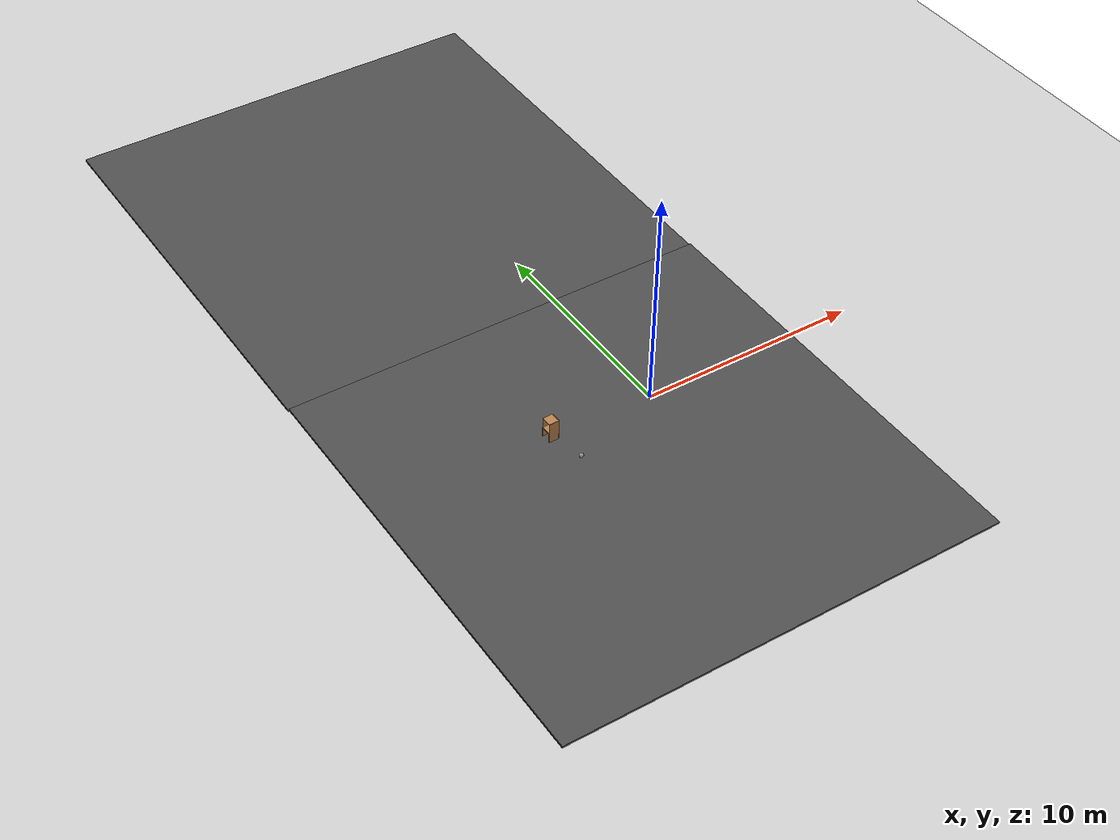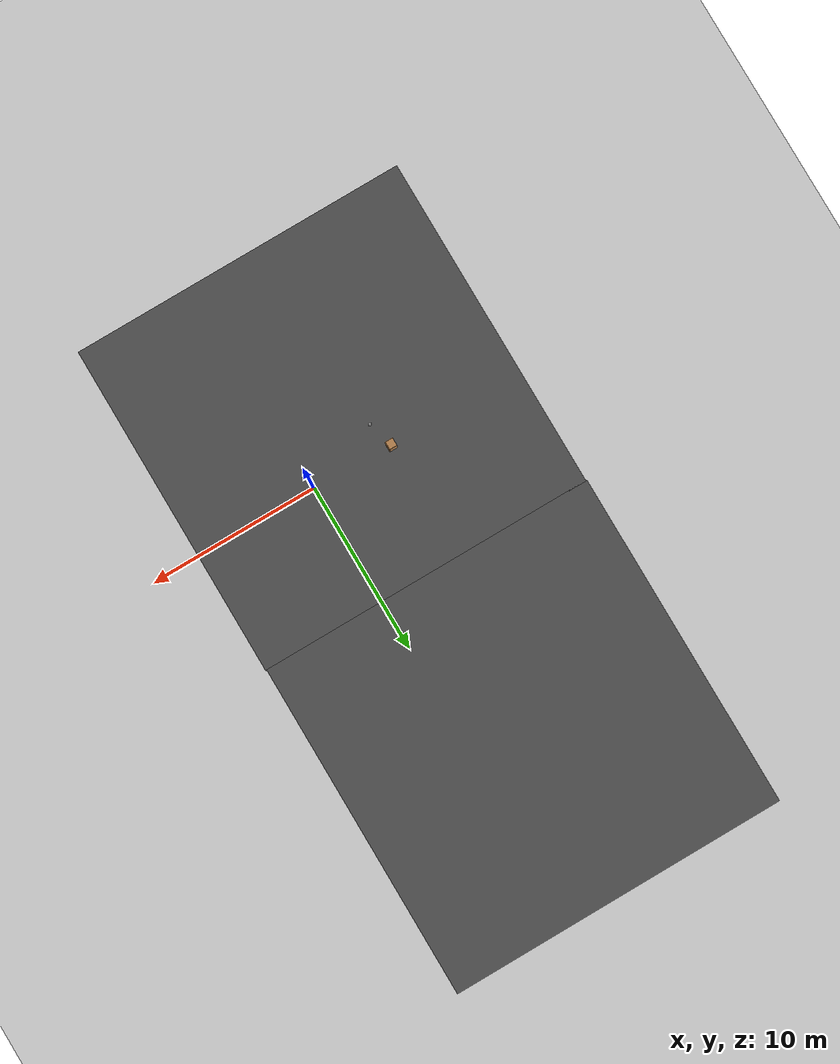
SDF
<sdf version="1.6">
 <world name="default">
  <model name="ground_plane">
   <static>1</static>
   <link name="link">
    <collision name="collision">
     <geometry><plane><normal>0 0 1</normal><size>100 100</size></plane></geometry>
     <surface>
      <contact><collide_bitmask>65535</collide_bitmask></contact>
      <friction><ode><mu>100</mu><mu2>50</mu2></ode></friction>
     </surface>
    </collision>
    <visual name="visual">
     <cast_shadows>0</cast_shadows>
     <geometry><plane><normal>0 0 1</normal><size>100 100</size></plane></geometry>
     <material>
      <script><uri>file://media/materials/scripts/gazebo.material</uri><name>Gazebo/Grey</name></script>
     </material>
    </visual>
   </link>
  </model>
  <model name="cabinet">
   <static>1</static>
   <link name="cabinet_bottom_plate">
    <inertial>
     <pose>0 0 -1 0 -0 0</pose>
     <inertia><ixx>2.05</ixx><ixy>0</ixy><ixz>0</ixz><iyy>2.05</iyy><iyz>0</iyz><izz>2.05</izz></inertia>
     <mass>25</mass>
    </inertial>
    <collision name="cabinet_bottom_plate_geom">
     <pose>0 0 0.01 0 -0 0</pose>
     <geometry><box><size>0.45 0.45 0.02</size></box></geometry>
    </collision>
    <visual name="cabinet_bottom_plate_geom_visual">
     <pose>0 0 0.01 0 -0 0</pose>
     <geometry><box><size>0.45 0.45 0.02</size></box></geometry>
     <material>
      <script><uri>file://media/materials/scripts/gazebo.material</uri><name>Gazebo/Wood</name></script>
     </material>
    </visual>
    <collision name="cabinet_bottom_plate_geom_cabinet_back_plate">
     <pose>0.235 0 0.51 0 -0 0</pose>
     <geometry><box><size>0.02 0.45 1.02</size></box></geometry>
    </collision>
    <visual name="cabinet_bottom_plate_geom_cabinet_back_plate_visual">
     <pose>0.235 0 0.51 0 -0 0</pose>
     <geometry><box><size>0.02 0.45 1.02</size></box></geometry>
     <material>
      <script><uri>file://media/materials/scripts/gazebo.material</uri><name>Gazebo/Wood</name></script>
     </material>
    </visual>
    <collision name="cabinet_bottom_plate_geom_cabinet_left_plate">
     <pose>0 0.235 0.51 0 -0 0</pose>
     <geometry><box><size>0.45 0.02 1.02</size></box></geometry>
    </collision>
    <visual name="cabinet_bottom_plate_geom_cabinet_left_plate_visual">
     <pose>0 0.235 0.51 0 -0 0</pose>
     <geometry><box><size>0.45 0.02 1.02</size></box></geometry>
     <material>
      <script><uri>file://media/materials/scripts/gazebo.material</uri><name>Gazebo/Wood</name></script>
     </material>
    </visual>
    <collision name="cabinet_bottom_plate_geom_cabinet_middle_plate">
     <pose>0 0 0.51 0 -0 0</pose>
     <geometry><box><size>0.45 0.45 0.02</size></box></geometry>
    </collision>
    <visual name="cabinet_bottom_plate_geom_cabinet_middle_plate_visual">
     <pose>0 0 0.51 0 -0 0</pose>
     <geometry><box><size>0.45 0.45 0.02</size></box></geometry>
     <material>
      <script><uri>file://media/materials/scripts/gazebo.material</uri><name>Gazebo/Wood</name></script>
     </material>
    </visual>
    <collision name="cabinet_bottom_plate_geom_cabinet_right_plate">
     <pose>0 -0.235 0.51 0 -0 0</pose>
     <geometry><box><size>0.45 0.02 1.02</size></box></geometry>
    </collision>
    <visual name="cabinet_bottom_plate_geom_cabinet_right_plate_visual">
     <pose>0 -0.235 0.51 0 -0 0</pose>
     <geometry><box><size>0.45 0.02 1.02</size></box></geometry>
     <material>
      <script><uri>file://media/materials/scripts/gazebo.material</uri><name>Gazebo/Wood</name></script>
     </material>
    </visual>
    <collision name="cabinet_bottom_plate_geom_cabinet_top_plate">
     <pose>0 0 1.01 0 -0 0</pose>
     <geometry><box><size>0.45 0.45 0.02</size></box></geometry>
    </collision>
    <visual name="cabinet_bottom_plate_geom_cabinet_top_plate_visual">
     <pose>0 0 1.01 0 -0 0</pose>
     <geometry><box><size>0.45 0.45 0.02</size></box></geometry>
     <material>
      <script><uri>file://media/materials/scripts/gazebo.material</uri><name>Gazebo/Wood</name></script>
     </material>
    </visual>
   </link>
   <pose>-4.74516 0.130822 0 0 -0 0</pose>
  </model>
  <model name="asphalt_plane">
   <static>1</static>
   <link name="link">
    <collision name="collision"><geometry><box><size>20 20 0.1</size></box></geometry></collision>
    <visual name="visual">
     <cast_shadows>0</cast_shadows>
     <geometry><box><size>20 20 0.1</size></box></geometry>
     <material>
      <script>
       <uri>model://asphalt_plane/materials/scripts</uri>
       <uri>model://asphalt_plane/materials/textures</uri>
       <name>vrc/asphalt</name>
      </script>
     </material>
    </visual>
   </link>
   <pose>-2.78394 -2.8847 0 0 -0 0</pose>
  </model>
  <model name="asphalt_plane_1">
   <static>1</static>
   <link name="link">
    <collision name="collision"><geometry><box><size>20 20 0.1</size></box></geometry></collision>
    <visual name="visual">
     <cast_shadows>0</cast_shadows>
     <geometry><box><size>20 20 0.1</size></box></geometry>
     <material>
      <script>
       <uri>model://asphalt_plane/materials/scripts</uri>
       <uri>model://asphalt_plane/materials/textures</uri>
       <name>vrc/asphalt</name>
      </script>
     </material>
    </visual>
   </link>
   <pose>-2.8479 17.0774 0 0 -0 0</pose>
  </model>
  <model name="my_ball_3">
   <link name="link_0">
    <inertial>
     <mass>1</mass>
     <inertia><ixx>0.1</ixx><ixy>0</ixy><ixz>0</ixz><iyy>0.1</iyy><iyz>0</iyz><izz>0.1</izz></inertia>
    </inertial>
    <visual name="visual">
     <geometry><sphere><radius>0.1</radius></sphere></geometry>
     <material>
      <lighting>1</lighting>
      <script><uri>file://media/materials/scripts/gazebo.material</uri><name>Gazebo/Grey</name></script>
      <shader type="pixel"><normal_map>__default__</normal_map></shader>
      <ambient>1 1 1 1</ambient>
      <diffuse>1 1 1 1</diffuse>
      <specular>1 1 1 1</specular>
      <emissive>1 1 1 1</emissive>
     </material>
    </visual>
    <collision name="collision">
     <geometry><sphere><radius>0.1</radius></sphere></geometry>
     <surface>
      <friction>
       <ode><mu>1</mu><mu2>1</mu2><fdir1>0 0 0</fdir1><slip1>0</slip1><slip2>0</slip2></ode>
       <torsional>
        <coefficient>1</coefficient>
        <patch_radius>0</patch_radius>
        <surface_radius>0</surface_radius>
        <use_patch_radius>1</use_patch_radius>
        <ode><slip>0</slip></ode>
       </torsional>
      </friction>
      <bounce><restitution_coefficient>0</restitution_coefficient><threshold>1e+06</threshold></bounce>
      <contact>
       <collide_without_contact>0</collide_without_contact>
       <collide_without_contact_bitmask>1</collide_without_contact_bitmask>
       <collide_bitmask>1</collide_bitmask>
       <ode>
        <soft_cfm>0</soft_cfm>
        <soft_erp>0.2</soft_erp>
        <kp>1e+13</kp>
        <kd>1</kd>
        <max_vel>0.01</max_vel>
        <min_depth>0</min_depth>
       </ode>
       <bullet>
        <split_impulse>1</split_impulse>
        <split_impulse_penetration_threshold>-0.01</split_impulse_penetration_threshold>
        <soft_cfm>0</soft_cfm>
        <soft_erp>0.2</soft_erp>
        <kp>1e+13</kp>
        <kd>1</kd>
       </bullet>
      </contact>
     </surface>
    </collision>
   </link>
   <static>0</static>
   <pose>-4.33438 -1.46776 0.15 0 -0 0</pose>
  </model>
 </world>
</sdf>
